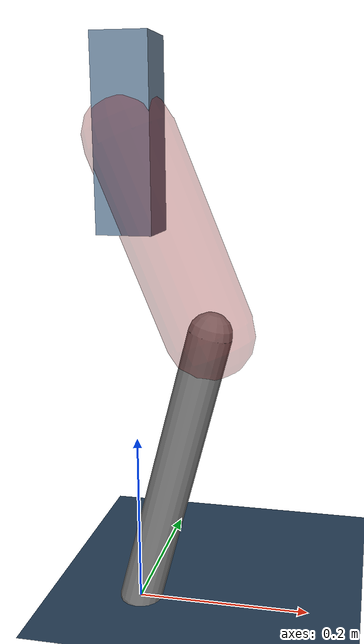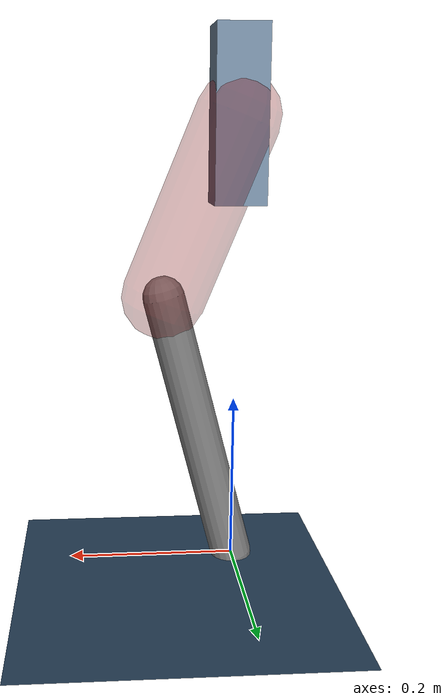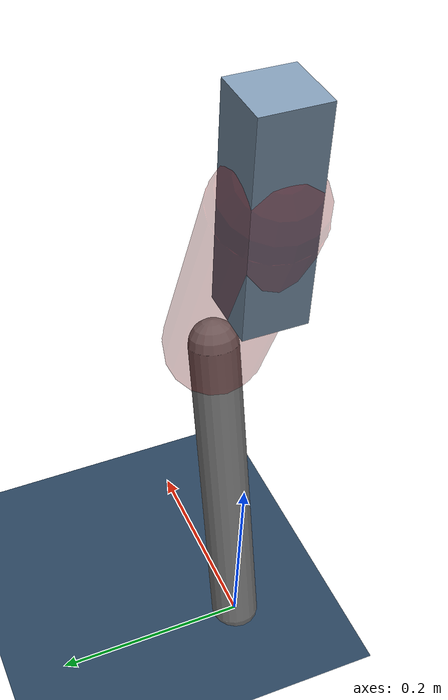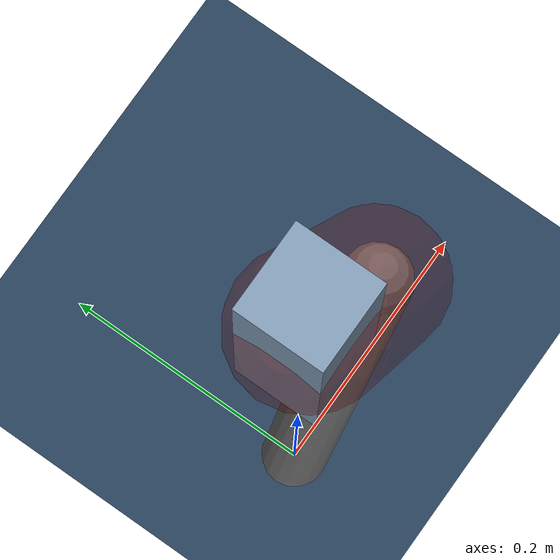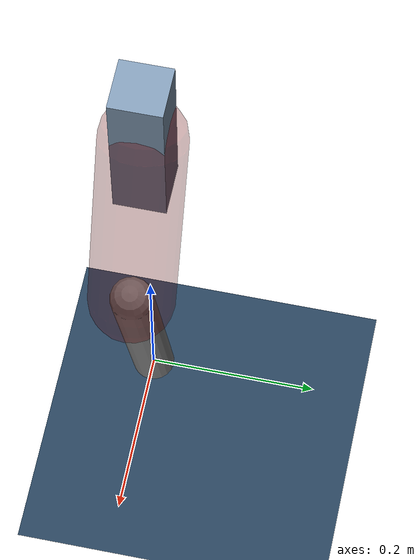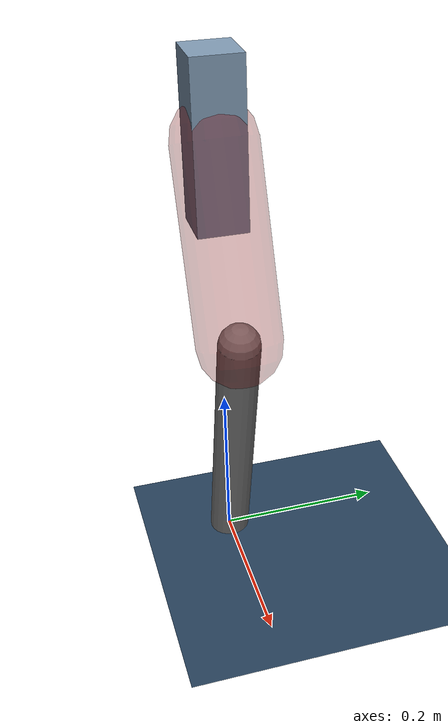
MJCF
<mujoco model="Hopper2D">
	<compiler inertiafromgeom="true" angle="radian" />
	<option timestep="0.001" integrator="implicit" cone="elliptic" solver="Newton" tolerance="1e-10" />

	<default>
		<geom contype="1" conaffinity="1" condim="3" friction="2 0.005 0.0001" solref="0.005 1" />
		<joint limited="true" damping="0.1" />
	</default>

	<asset>
		<texture name="skybox" type="skybox" builtin="gradient" rgb1=".4 .6 .8" rgb2="0 0 0" width="800" height="800" />
		<texture name="grid" type="2d" builtin="checker" rgb1=".1 .2 .3" rgb2=".2 .3 .4" width="300" height="300" mark="edge" markrgb=".2 .3 .4" />
		<material name="ground" texture="grid" texrepeat="1 1" texuniform="true" reflectance="0.1" />
		<material name="leg" rgba="0.5 0.6 0.7 1" />
	</asset>

	<worldbody>

		<geom name="floor" type="plane" size="5 5 0.25" material="ground" />

		<light directional="false" diffuse="0.8 0.8 0.8" specular="0.3 0.3 0.3" pos="0 0 2" dir="0 0 -1" />
		<light mode="targetbodycom" target="base" directional="false" diffuse="0.8 0.8 0.8" specular="0.3 0.3 0.3" pos="0 0 2" dir="0 0 -1" />

		<camera name="fixed" pos="0 -2 1" xyaxes="1 0 0 0 0 1" />
		<camera name="tracking" mode="trackcom" pos="0 -3 1" />

		<body name="root" pos="0 0 0.5356635204981313">
			<joint name="slide_x" type="slide" axis="1 0 0" range="-100 100" />
			<joint name="slide_z" type="slide" axis="0 0 1" range="0 10" />

			<body name="base" pos="0 0 0">
				<geom name="torso" type="box" size="0.03 0.03 0.1" mass="2.573" material="leg" />

				<body name="link1" pos="0 0 0" euler="0 1.1816288216531217 0">
					<joint type="hinge" axis="0 -1 0" pos="0 0 0" name="hinge1" limited="true" range="-3.14 3.14" stiffness="0" damping="0.1" />
					<geom name="thigh" type="capsule" fromto="0 0 0 0.22525760473487016 0 0" size="0.05" rgba="0.5 0 0 0.3" mass="0.7929697723106625" />

					<body name="link2" pos="0.22525760473487016 0 0" euler="0 0.6446286107087943 0">
						<joint type="hinge" axis="0 -1 0" pos="0 0 0" name="hinge2" limited="true" range="-3.14 3.14" stiffness="0" damping="0.1" />
						<geom name="shank" type="capsule" fromto="0 0 0 0.33822598630781336 0 0" size="0.025" mass="0.514403387677032" />

					</body>
				</body>
			</body>
		</body>
	</worldbody>

	<actuator>
		<motor name="torque1" joint="hinge1" ctrlrange="-46.89696464231159 46.89696464231159" ctrllimited="true" gear="1" />
		<motor name="torque2" joint="hinge2" ctrlrange="-94.31019112945046 94.31019112945046" ctrllimited="true" gear="1" />
	</actuator>
</mujoco>
